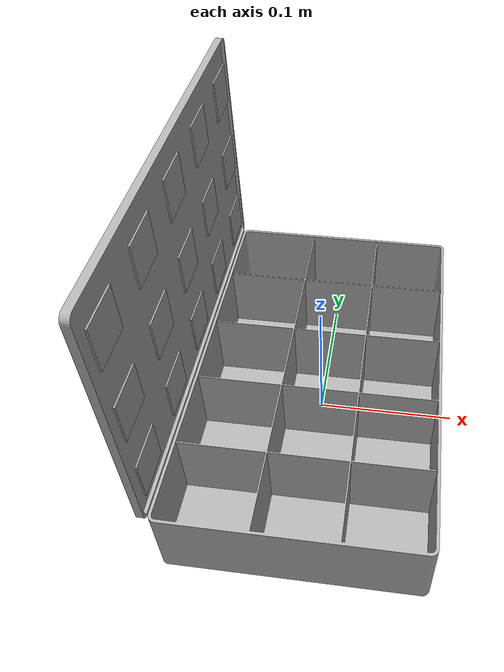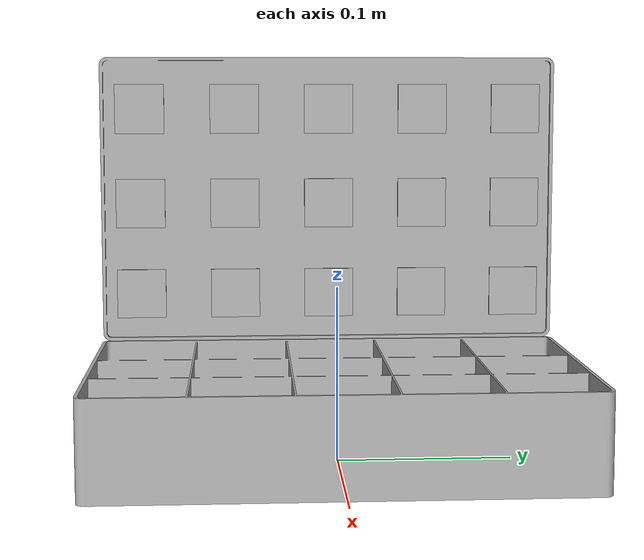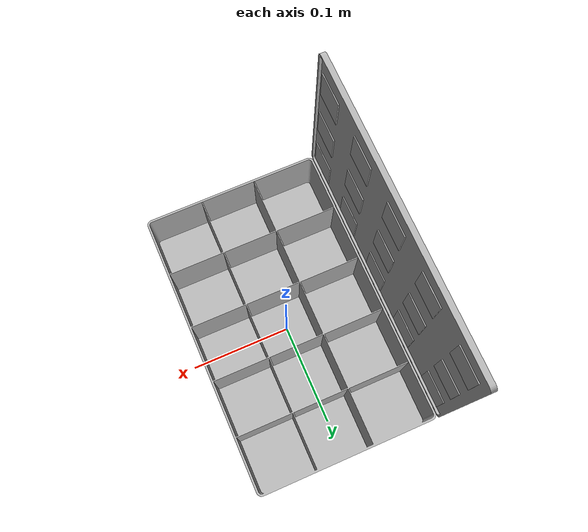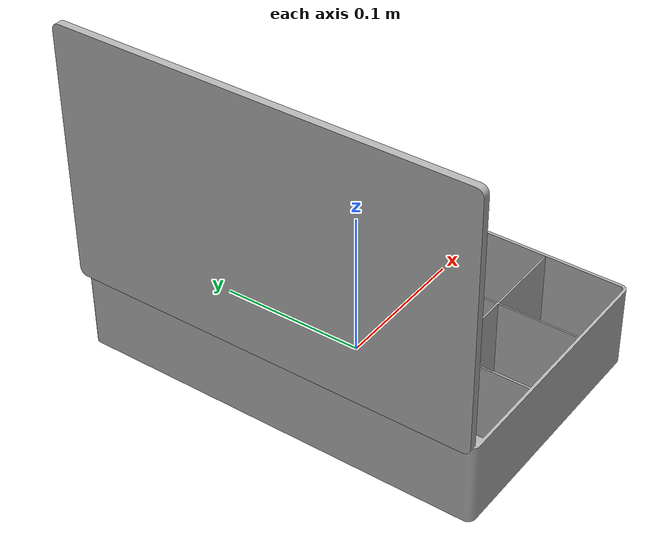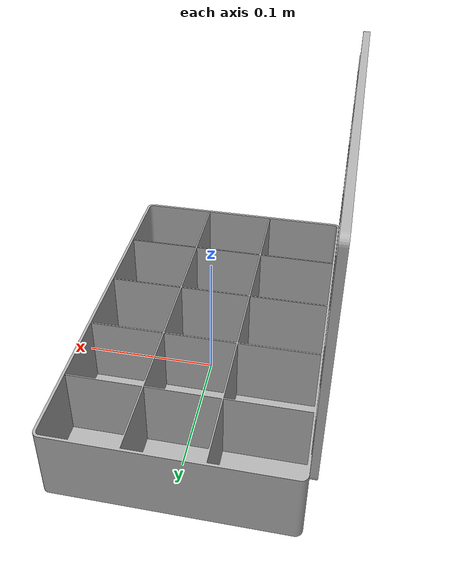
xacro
<?xml version="1.0" ?>
<robot name="drop_container" xmlns:xacro="http://www.ros.org/wiki/xacro">

<xacro:include filename="$(find drop_container_description)/urdf/materials.xacro" />
<xacro:include filename="$(find drop_container_description)/urdf/drop_container.trans" />
<xacro:include filename="$(find drop_container_description)/urdf/drop_container.gazebo" />

<link name="base_link">
  <inertial>
    <origin xyz="0.00027753454607127713 0.00010346324621890149 0.01831391799600729" rpy="0 0 0"/>
    <mass value="2.0387660131302434"/>
    <inertia ixx="0.016817" iyy="0.007716" izz="0.023184" ixy="0.0" iyz="-2e-06" ixz="-6e-06"/>
  </inertial>
  <visual>
    <origin xyz="0 0 0" rpy="0 0 0"/>
    <geometry>
      <mesh filename="file://$(find drop_container_description)/meshes/base_link.stl" scale="0.001 0.001 0.001"/>
    </geometry>
    <material name="silver"/>
  </visual>
  <collision>
    <origin xyz="0 0 0" rpy="0 0 0"/>
    <geometry>
      <mesh filename="file://$(find drop_container_description)/meshes/base_link.stl" scale="0.001 0.001 0.001"/>
    </geometry>
  </collision>
</link>

<link name="lid_1">
  <inertial>
    <origin xyz="-0.003661842248802144 2.960193493330791e-17 0.08750000000000005" rpy="0 0 0"/>
    <mass value="0.9963378039888945"/>
    <inertia ixx="0.009318" iyy="0.002647" izz="0.006673" ixy="0.0" iyz="0.0" ixz="0.0"/>
  </inertial>
  <visual>
    <origin xyz="0.0875 0.0 -0.056" rpy="0 0 0"/>
    <geometry>
      <mesh filename="file://$(find drop_container_description)/meshes/lid_1.stl" scale="0.001 0.001 0.001"/>
    </geometry>
    <material name="silver"/>
  </visual>
  <collision>
    <origin xyz="0.0875 0.0 -0.056" rpy="0 0 0"/>
    <geometry>
      <mesh filename="file://$(find drop_container_description)/meshes/lid_1.stl" scale="0.001 0.001 0.001"/>
    </geometry>
  </collision>
</link>

<!-- ArUco Marker 1: Row 1, Col 1 (Top-Left) -->
<link name="aruco_01_1">
  <inertial>
    <origin xyz="0 0 0" rpy="0 0 0"/>
    <mass value="0.007065000000000037"/>
    <inertia ixx="1e-06" iyy="1e-06" izz="1e-06" ixy="0.0" iyz="0.0" ixz="0.0"/>
  </inertial>
  <visual>
    <origin xyz="0 0 0" rpy="0 0 0"/>
    <geometry>
      <box size="0.001 0.03 0.03"/>
    </geometry>
    <material name="silver"/>
  </visual>
  <collision>
    <origin xyz="0 0 0" rpy="0 0 0"/>
    <geometry>
      <box size="0.001 0.03 0.03"/>
    </geometry>
  </collision>
</link>

<!-- ArUco Marker 2: Row 2, Col 1 -->
<link name="aruco_02_1">
  <inertial>
    <origin xyz="0 0 0" rpy="0 0 0"/>
    <mass value="0.007065000000000037"/>
    <inertia ixx="1e-06" iyy="1e-06" izz="1e-06" ixy="0.0" iyz="0.0" ixz="0.0"/>
  </inertial>
  <visual>
    <origin xyz="0 0 0" rpy="0 0 0"/>
    <geometry>
      <box size="0.001 0.03 0.03"/>
    </geometry>
    <material name="silver"/>
  </visual>
  <collision>
    <origin xyz="0 0 0" rpy="0 0 0"/>
    <geometry>
      <box size="0.001 0.03 0.03"/>
    </geometry>
  </collision>
</link>

<!-- ArUco Marker 3: Row 3, Col 1 (Bottom-Left) -->
<link name="aruco_03_1">
  <inertial>
    <origin xyz="0 0 0" rpy="0 0 0"/>
    <mass value="0.007065000000000037"/>
    <inertia ixx="1e-06" iyy="1e-06" izz="1e-06" ixy="0.0" iyz="0.0" ixz="0.0"/>
  </inertial>
  <visual>
    <origin xyz="0 0 0" rpy="0 0 0"/>
    <geometry>
      <box size="0.001 0.03 0.03"/>
    </geometry>
    <material name="silver"/>
  </visual>
  <collision>
    <origin xyz="0 0 0" rpy="0 0 0"/>
    <geometry>
      <box size="0.001 0.03 0.03"/>
    </geometry>
  </collision>
</link>

<!-- ArUco Marker 4: Row 1, Col 2 -->
<link name="aruco_04_1">
  <inertial>
    <origin xyz="0 0 0" rpy="0 0 0"/>
    <mass value="0.007065000000000037"/>
    <inertia ixx="1e-06" iyy="1e-06" izz="1e-06" ixy="0.0" iyz="0.0" ixz="0.0"/>
  </inertial>
  <visual>
    <origin xyz="0 0 0" rpy="0 0 0"/>
    <geometry>
      <box size="0.001 0.03 0.03"/>
    </geometry>
    <material name="silver"/>
  </visual>
  <collision>
    <origin xyz="0 0 0" rpy="0 0 0"/>
    <geometry>
      <box size="0.001 0.03 0.03"/>
    </geometry>
  </collision>
</link>

<!-- ArUco Marker 5: Row 2, Col 2 -->
<link name="aruco_05_1">
  <inertial>
    <origin xyz="0 0 0" rpy="0 0 0"/>
    <mass value="0.007065000000000037"/>
    <inertia ixx="1e-06" iyy="1e-06" izz="1e-06" ixy="0.0" iyz="0.0" ixz="0.0"/>
  </inertial>
  <visual>
    <origin xyz="0 0 0" rpy="0 0 0"/>
    <geometry>
      <box size="0.001 0.03 0.03"/>
    </geometry>
    <material name="silver"/>
  </visual>
  <collision>
    <origin xyz="0 0 0" rpy="0 0 0"/>
    <geometry>
      <box size="0.001 0.03 0.03"/>
    </geometry>
  </collision>
</link>

<!-- ArUco Marker 6: Row 3, Col 2 -->
<link name="aruco_06_1">
  <inertial>
    <origin xyz="0 0 0" rpy="0 0 0"/>
    <mass value="0.007065000000000037"/>
    <inertia ixx="1e-06" iyy="1e-06" izz="1e-06" ixy="0.0" iyz="0.0" ixz="0.0"/>
  </inertial>
  <visual>
    <origin xyz="0 0 0" rpy="0 0 0"/>
    <geometry>
      <box size="0.001 0.03 0.03"/>
    </geometry>
    <material name="silver"/>
  </visual>
  <collision>
    <origin xyz="0 0 0" rpy="0 0 0"/>
    <geometry>
      <box size="0.001 0.03 0.03"/>
    </geometry>
  </collision>
</link>

<!-- ArUco Marker 7: Row 1, Col 3 -->
<link name="aruco_07_1">
  <inertial>
    <origin xyz="0 0 0" rpy="0 0 0"/>
    <mass value="0.007065000000000037"/>
    <inertia ixx="1e-06" iyy="1e-06" izz="1e-06" ixy="0.0" iyz="0.0" ixz="0.0"/>
  </inertial>
  <visual>
    <origin xyz="0 0 0" rpy="0 0 0"/>
    <geometry>
      <box size="0.001 0.03 0.03"/>
    </geometry>
    <material name="silver"/>
  </visual>
  <collision>
    <origin xyz="0 0 0" rpy="0 0 0"/>
    <geometry>
      <box size="0.001 0.03 0.03"/>
    </geometry>
  </collision>
</link>

<!-- ArUco Marker 8: Row 2, Col 3 (CENTER) -->
<link name="aruco_08_1">
  <inertial>
    <origin xyz="0 0 0" rpy="0 0 0"/>
    <mass value="0.007065000000000037"/>
    <inertia ixx="1e-06" iyy="1e-06" izz="1e-06" ixy="0.0" iyz="0.0" ixz="0.0"/>
  </inertial>
  <visual>
    <origin xyz="0 0 0" rpy="0 0 0"/>
    <geometry>
      <box size="0.001 0.03 0.03"/>
    </geometry>
    <material name="silver"/>
  </visual>
  <collision>
    <origin xyz="0 0 0" rpy="0 0 0"/>
    <geometry>
      <box size="0.001 0.03 0.03"/>
    </geometry>
  </collision>
</link>

<!-- ArUco Marker 9: Row 3, Col 3 -->
<link name="aruco_09_1">
  <inertial>
    <origin xyz="0 0 0" rpy="0 0 0"/>
    <mass value="0.007065000000000037"/>
    <inertia ixx="1e-06" iyy="1e-06" izz="1e-06" ixy="0.0" iyz="0.0" ixz="0.0"/>
  </inertial>
  <visual>
    <origin xyz="0 0 0" rpy="0 0 0"/>
    <geometry>
      <box size="0.001 0.03 0.03"/>
    </geometry>
    <material name="silver"/>
  </visual>
  <collision>
    <origin xyz="0 0 0" rpy="0 0 0"/>
    <geometry>
      <box size="0.001 0.03 0.03"/>
    </geometry>
  </collision>
</link>

<!-- ArUco Marker 10: Row 1, Col 4 -->
<link name="aruco_10_1">
  <inertial>
    <origin xyz="0 0 0" rpy="0 0 0"/>
    <mass value="0.007065000000000037"/>
    <inertia ixx="1e-06" iyy="1e-06" izz="1e-06" ixy="0.0" iyz="0.0" ixz="0.0"/>
  </inertial>
  <visual>
    <origin xyz="0 0 0" rpy="0 0 0"/>
    <geometry>
      <box size="0.001 0.03 0.03"/>
    </geometry>
    <material name="silver"/>
  </visual>
  <collision>
    <origin xyz="0 0 0" rpy="0 0 0"/>
    <geometry>
      <box size="0.001 0.03 0.03"/>
    </geometry>
  </collision>
</link>

<!-- ArUco Marker 11: Row 2, Col 4 -->
<link name="aruco_11_1">
  <inertial>
    <origin xyz="0 0 0" rpy="0 0 0"/>
    <mass value="0.007065000000000037"/>
    <inertia ixx="1e-06" iyy="1e-06" izz="1e-06" ixy="0.0" iyz="0.0" ixz="0.0"/>
  </inertial>
  <visual>
    <origin xyz="0 0 0" rpy="0 0 0"/>
    <geometry>
      <box size="0.001 0.03 0.03"/>
    </geometry>
    <material name="silver"/>
  </visual>
  <collision>
    <origin xyz="0 0 0" rpy="0 0 0"/>
    <geometry>
      <box size="0.001 0.03 0.03"/>
    </geometry>
  </collision>
</link>

<!-- ArUco Marker 12: Row 3, Col 4 -->
<link name="aruco_12_1">
  <inertial>
    <origin xyz="0 0 0" rpy="0 0 0"/>
    <mass value="0.007065000000000037"/>
    <inertia ixx="1e-06" iyy="1e-06" izz="1e-06" ixy="0.0" iyz="0.0" ixz="0.0"/>
  </inertial>
  <visual>
    <origin xyz="0 0 0" rpy="0 0 0"/>
    <geometry>
      <box size="0.001 0.03 0.03"/>
    </geometry>
    <material name="silver"/>
  </visual>
  <collision>
    <origin xyz="0 0 0" rpy="0 0 0"/>
    <geometry>
      <box size="0.001 0.03 0.03"/>
    </geometry>
  </collision>
</link>

<!-- ArUco Marker 13: Row 1, Col 5 (Top-Right) -->
<link name="aruco_13_1">
  <inertial>
    <origin xyz="0 0 0" rpy="0 0 0"/>
    <mass value="0.007065000000000037"/>
    <inertia ixx="1e-06" iyy="1e-06" izz="1e-06" ixy="0.0" iyz="0.0" ixz="0.0"/>
  </inertial>
  <visual>
    <origin xyz="0 0 0" rpy="0 0 0"/>
    <geometry>
      <box size="0.001 0.03 0.03"/>
    </geometry>
    <material name="silver"/>
  </visual>
  <collision>
    <origin xyz="0 0 0" rpy="0 0 0"/>
    <geometry>
      <box size="0.001 0.03 0.03"/>
    </geometry>
  </collision>
</link>

<!-- ArUco Marker 14: Row 2, Col 5 -->
<link name="aruco_14_1">
  <inertial>
    <origin xyz="0 0 0" rpy="0 0 0"/>
    <mass value="0.007065000000000037"/>
    <inertia ixx="1e-06" iyy="1e-06" izz="1e-06" ixy="0.0" iyz="0.0" ixz="0.0"/>
  </inertial>
  <visual>
    <origin xyz="0 0 0" rpy="0 0 0"/>
    <geometry>
      <box size="0.001 0.03 0.03"/>
    </geometry>
    <material name="silver"/>
  </visual>
  <collision>
    <origin xyz="0 0 0" rpy="0 0 0"/>
    <geometry>
      <box size="0.001 0.03 0.03"/>
    </geometry>
  </collision>
</link>

<!-- ArUco Marker 15: Row 3, Col 5 (Bottom-Right) -->
<link name="aruco_15_1">
  <inertial>
    <origin xyz="0 0 0" rpy="0 0 0"/>
    <mass value="0.007065000000000037"/>
    <inertia ixx="1e-06" iyy="1e-06" izz="1e-06" ixy="0.0" iyz="0.0" ixz="0.0"/>
  </inertial>
  <visual>
    <origin xyz="0 0 0" rpy="0 0 0"/>
    <geometry>
      <box size="0.001 0.03 0.03"/>
    </geometry>
    <material name="silver"/>
  </visual>
  <collision>
    <origin xyz="0 0 0" rpy="0 0 0"/>
    <geometry>
      <box size="0.001 0.03 0.03"/>
    </geometry>
  </collision>
</link>

<!-- Lid joint -->
<joint name="1" type="revolute">
  <origin xyz="-0.0875 0.0 0.056" rpy="0 0 0"/>
  <parent link="base_link"/>
  <child link="lid_1"/>
  <axis xyz="0.0 -1.0 0.0"/>
  <limit lower="-1.571" upper="1.571" effort="1000" velocity="1.0"/>
</joint>

<!-- ArUco Marker Joints: Position each marker in the 3x5 grid -->
<!-- Grid spacing: 0.058m between markers (58mm) -->
<!-- Center marker (8) at origin of lid, others positioned relative to it -->

<!-- Row 1 (Top row, Z = +0.1435) -->
<joint name="Rigid 1" type="fixed">
  <origin xyz="0.0 -0.116 0.1435" rpy="1.5708 0 0"/>
  <parent link="lid_1"/>
  <child link="aruco_01_1"/>
</joint>

<joint name="Rigid 4" type="fixed">
  <origin xyz="0.0 -0.058 0.1435" rpy="1.5708 0 0"/>
  <parent link="lid_1"/>
  <child link="aruco_04_1"/>
</joint>

<joint name="Rigid 7" type="fixed">
  <origin xyz="0.0 0.0 0.1435" rpy="1.5708 0 0"/>
  <parent link="lid_1"/>
  <child link="aruco_07_1"/>
</joint>

<joint name="Rigid 10" type="fixed">
  <origin xyz="0.0 0.058 0.1435" rpy="1.5708 0 0"/>
  <parent link="lid_1"/>
  <child link="aruco_10_1"/>
</joint>

<joint name="Rigid 13" type="fixed">
  <origin xyz="0.0 0.116 0.1435" rpy="1.5708 0 0"/>
  <parent link="lid_1"/>
  <child link="aruco_13_1"/>
</joint>

<!-- Row 2 (Middle row, Z = 0.0855) -->
<joint name="Rigid 2" type="fixed">
  <origin xyz="0.0 -0.116 0.0855" rpy="1.5708 0 0"/>
  <parent link="lid_1"/>
  <child link="aruco_02_1"/>
</joint>

<joint name="Rigid 5" type="fixed">
  <origin xyz="0.0 -0.058 0.0855" rpy="1.5708 0 0"/>
  <parent link="lid_1"/>
  <child link="aruco_05_1"/>
</joint>

<joint name="Rigid 8" type="fixed">
  <origin xyz="0.0 0.0 0.0855" rpy="0 0 0"/>
  <parent link="lid_1"/>
  <child link="aruco_08_1"/>
</joint>

<joint name="Rigid 11" type="fixed">
  <origin xyz="0.0 0.058 0.0855" rpy="1.5708 0 0"/>
  <parent link="lid_1"/>
  <child link="aruco_11_1"/>
</joint>

<joint name="Rigid 14" type="fixed">
  <origin xyz="0.0 0.116 0.0855" rpy="1.5708 0 0"/>
  <parent link="lid_1"/>
  <child link="aruco_14_1"/>
</joint>

<!-- Row 3 (Bottom row, Z = 0.0295) -->
<joint name="Rigid 3" type="fixed">
  <origin xyz="0.0 -0.116 0.0295" rpy="1.5708 0 0"/>
  <parent link="lid_1"/>
  <child link="aruco_03_1"/>
</joint>

<joint name="Rigid 6" type="fixed">
  <origin xyz="0.0 -0.058 0.0295" rpy="1.5708 0 0"/>
  <parent link="lid_1"/>
  <child link="aruco_06_1"/>
</joint>

<joint name="Rigid 9" type="fixed">
  <origin xyz="0.0 0.0 0.0295" rpy="1.5708 0 0"/>
  <parent link="lid_1"/>
  <child link="aruco_09_1"/>
</joint>

<joint name="Rigid 12" type="fixed">
  <origin xyz="0.0 0.058 0.0295" rpy="1.5708 0 0"/>
  <parent link="lid_1"/>
  <child link="aruco_12_1"/>
</joint>

<joint name="Rigid 15" type="fixed">
  <origin xyz="0.0 0.116 0.0295" rpy="1.5708 0 0"/>
  <parent link="lid_1"/>
  <child link="aruco_15_1"/>
</joint>

</robot>

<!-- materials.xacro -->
<robot name="drop_container" xmlns:xacro="http://www.ros.org/wiki/xacro" >

<material name="silver">
  <color rgba="0.700 0.700 0.700 1.000"/>
</material>

</robot>

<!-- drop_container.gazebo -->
<robot name="drop_container" xmlns:xacro="http://www.ros.org/wiki/xacro" >

<xacro:property name="body_color" value="Gazebo/Silver" />

<gazebo>
  <plugin name="control" filename="libgazebo_ros_control.so"/>
</gazebo>
<gazebo reference="base_link">
  <material>${body_color}</material>
  <mu1>0.2</mu1>
  <mu2>0.2</mu2>
  <self_collide>true</self_collide>
  <gravity>true</gravity>
</gazebo>

<gazebo reference="lid_1">
  <material>${body_color}</material>
  <mu1>0.2</mu1>
  <mu2>0.2</mu2>
  <self_collide>true</self_collide>
</gazebo>

<gazebo reference="aruco_01_1">
  <material>${body_color}</material>
  <mu1>0.2</mu1>
  <mu2>0.2</mu2>
  <self_collide>true</self_collide>
</gazebo>

<gazebo reference="aruco_02_1">
  <material>${body_color}</material>
  <mu1>0.2</mu1>
  <mu2>0.2</mu2>
  <self_collide>true</self_collide>
</gazebo>

<gazebo reference="aruco_03_1">
  <material>${body_color}</material>
  <mu1>0.2</mu1>
  <mu2>0.2</mu2>
  <self_collide>true</self_collide>
</gazebo>

<gazebo reference="aruco_04_1">
  <material>${body_color}</material>
  <mu1>0.2</mu1>
  <mu2>0.2</mu2>
  <self_collide>true</self_collide>
</gazebo>

<gazebo reference="aruco_05_1">
  <material>${body_color}</material>
  <mu1>0.2</mu1>
  <mu2>0.2</mu2>
  <self_collide>true</self_collide>
</gazebo>

<gazebo reference="aruco_06_1">
  <material>${body_color}</material>
  <mu1>0.2</mu1>
  <mu2>0.2</mu2>
  <self_collide>true</self_collide>
</gazebo>

<gazebo reference="aruco_07_1">
  <material>${body_color}</material>
  <mu1>0.2</mu1>
  <mu2>0.2</mu2>
  <self_collide>true</self_collide>
</gazebo>

<gazebo reference="aruco_08_1">
  <material>${body_color}</material>
  <mu1>0.2</mu1>
  <mu2>0.2</mu2>
  <self_collide>true</self_collide>
</gazebo>

<gazebo reference="aruco_09_1">
  <material>${body_color}</material>
  <mu1>0.2</mu1>
  <mu2>0.2</mu2>
  <self_collide>true</self_collide>
</gazebo>

<gazebo reference="aruco_10_1">
  <material>${body_color}</material>
  <mu1>0.2</mu1>
  <mu2>0.2</mu2>
  <self_collide>true</self_collide>
</gazebo>

<gazebo reference="aruco_11_1">
  <material>${body_color}</material>
  <mu1>0.2</mu1>
  <mu2>0.2</mu2>
  <self_collide>true</self_collide>
</gazebo>

<gazebo reference="aruco_12_1">
  <material>${body_color}</material>
  <mu1>0.2</mu1>
  <mu2>0.2</mu2>
  <self_collide>true</self_collide>
</gazebo>

<gazebo reference="aruco_13_1">
  <material>${body_color}</material>
  <mu1>0.2</mu1>
  <mu2>0.2</mu2>
  <self_collide>true</self_collide>
</gazebo>

<gazebo reference="aruco_14_1">
  <material>${body_color}</material>
  <mu1>0.2</mu1>
  <mu2>0.2</mu2>
  <self_collide>true</self_collide>
</gazebo>

<gazebo reference="aruco_15_1">
  <material>${body_color}</material>
  <mu1>0.2</mu1>
  <mu2>0.2</mu2>
  <self_collide>true</self_collide>
</gazebo>

</robot>
